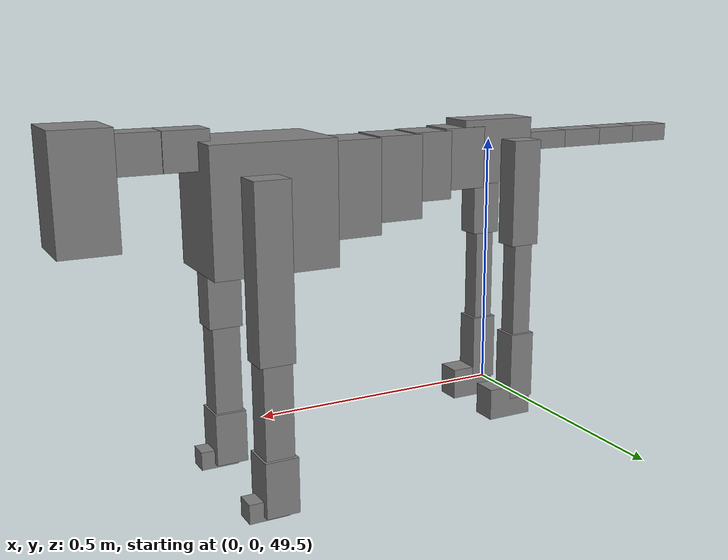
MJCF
<mujoco model="dog">

    <default>
        <joint armature="0.02" stiffness="1" damping="0.2" limited="true"/>
        <geom condim="3" friction="1 0.05 0.05" margin="0.01"/>
        <motor ctrllimited="true" ctrlrange="-1.0 1.0" forcelimited="true" gear="50"/>
    </default>

    <compiler inertiafromgeom="true" angle="radian"/>

    <option timestep="0.016" iterations="50" tolerance="1e-10" solver="Newton" jacobian="dense" cone="pyramidal"/>

    <size nconmax="20000" njmax="60000" nstack="5000000"/>
    <visual>
        <map force="0.1" zfar="30"/>
        <rgba haze="0.15 0.25 0.35 1"/>
        <quality shadowsize="2048"/>
        <global offwidth="800" offheight="800"/>
    </visual>

    <asset>
        <texture type="skybox" builtin="gradient" rgb1="0.3 0.5 0.7" rgb2="0 0 0" width="512" height="512"/>
        <texture name="texplane" type="2d" builtin="checker" rgb1=".2 .3 .4" rgb2=".1 0.15 0.2" width="512" height="512"
                 mark="cross" markrgb=".8 .8 .8"/>
        <texture name="texgeom" type="cube" builtin="flat" mark="cross" width="127" height="1278" rgb1="0.8 0.6 0.4"
                 rgb2="0.8 0.6 0.4" markrgb="1 1 1" random="0.01"/>

        <material name="matplane" reflectance="0.3" texture="texplane" texrepeat="1 1" texuniform="true"/>
        <material name="matgeom" texture="texgeom" texuniform="true" rgba="0.8 0.6 .4 1"/>
    </asset>

    <worldbody>
        <geom name="floor" pos="0 0 0" size="0 0 .25" type="plane" material="matplane" condim="3"/>

        <light directional="false" diffuse=".2 .2 .2" specular="0 0 0" pos="0 0 5" dir="0 0 -1" castshadow="false"/>
        <light mode="targetbodycom" target="torso" directional="false" diffuse=".8 .8 .8" specular="0.3 0.3 0.3"
               pos="0 0 4.0" dir="0 0 -1"/>

        <body name="root" pos="0 0 50">
            <freejoint name="root_1"/>
            <geom type="box" pos="0 0 -0.02" size="0.0774  0.0358  0.063" density="2030"/>

            <body name="spine1" pos="0.054 0 0">
                <joint name="spine1_y" axis="0 1 0" range="0 0.7" limited="true"/>
                <geom type="box" pos="0.02375 0 -0.03" size="0.04375  0.0375  0.05985" density="2030"/>

                <body name="spine2" pos="0.0612 0 0">
                    <joint name="spine2_y" axis="0 1 0" range="-0.15 0.15" limited="true"/>
                    <geom type="box" pos="0.03555  0  -0.04" size="0.04055  0.039  0.06615" density="2030"/>

                    <body name="spine3" pos="0.0730 0 0">
                        <joint name="spine3_y" axis="0 1 0" range="-0.15 0.15" limited="true"/>
                        <geom type="box" pos="0.03555  0  -0.057" size="0.04555  0.0445  0.081" density="2030"/>

                        <body name="spine4" pos="0.0780 0 0">
                            <joint name="spine4_y" axis="0 1 0" range="-0.15 0.15" limited="true"/>
                            <geom type="box" pos="0.05265  0  -0.07" size="0.05265  0.045  0.09135" density="2030"/>

                            <body name="torso" pos="0.1082 0 0">
                                <joint name="torso_y" axis="0 1 0" range="-0.15 0.15" limited="true"/>
                                <geom type="box" pos="0.11925  0  -0.085" size="0.11925  0.085  0.11745"
                                      density="2030"/>

                                <body name="neck1" pos="0.2160  0   0.0180">
                                    <joint name="neck1_y" axis="0 1 0" range="-1.2  -1" limited="true"/>
                                    <geom type="box" pos="0.0423  0  0" size="0.0423  0.03  0.036" density="2325"/>

                                    <body name="neck2" pos="0.0853  0  0">
                                        <joint name="neck2_y" axis="0 1 0" range="0.1  0" limited="true"/>
                                        <geom type="box" pos="0.0423  0  0" size="0.0423  0.03  0.036" density="2325"/>

                                        <body name="head" pos="0.0853  0  0">
                                            <joint name="head_y" axis="0 1 0" range="-0.3  -0.2" limited="true"/>
                                            <geom type="box" pos="0.0531  0  -0.055" size="0.0531  0.06  0.1044"
                                                  density="4030"/>

                                        </body>
                                    </body>
                                </body>

                                <body name="front_shoulder" pos="0.156  0   -0.0480">
                                    <joint name="front_shoulder_y" axis="0 1 0" range="-1 1.5" limited="true"/>
                                    <geom type="box" pos="0 0.13 -0.1353" size="0.0338  0.0289  0.1620" density="1158"/>
                                    <geom type="box" pos="0 -0.13 -0.1353" size="0.0338  0.0289  0.1620"
                                          density="1158"/>

                                    <body name="front_elbow" pos="0  0  -0.2707">
                                        <joint name="front_elbow_y" axis="0 1 0" range="-2 0" limited="true"/>
                                        <geom type="box" pos="0 0.13 -0.1069" size="0.0277  0.0283  0.1069"
                                              density="1081"/>
                                        <geom type="box" pos="0 -0.13 -0.1069" size="0.0277  0.0283  0.1069"
                                              density="1081"/>

                                        <body name="front_wrist" pos="0  0  -0.2137">
                                            <joint name="front_wrist_y" axis="0 1 0" range="-0.2 0" limited="true"/>
                                            <geom type="box" pos="0 0.13 -0.0402" size="0.0319  0.0355  0.0534"
                                                  density="1664"/>
                                            <geom type="box" pos="0 -0.13 -0.0402" size="0.0319  0.0355  0.0534"
                                                  density="1664"/>

                                            <body name="front_finger_end" pos="0  0  -0.0805">
                                                <joint name="front_finger_y" axis="0 1 0" range="-0.4 1"
                                                       limited="true"/>
                                                <geom type="box" pos="0.0210  0.13  -0.0036"
                                                      size="0.0386  0.0210  0.0186" density="1515"/>
                                                <geom type="box" pos="0.0210  -0.13  -0.0036"
                                                      size="0.0386  0.0210  0.0186" density="1515"/>

                                            </body>

                                        </body>
                                    </body>
                                </body>

                            </body>
                        </body>
                    </body>
                </body>
            </body>

            <body name="back_hip" pos="-0.03 0 -0.018">
                <joint name="back_hip_y" axis="0 1 0" range="-1.5 0.3" limited="true"/>
                <geom type="box" pos="0 0.07 -0.0810" size="0.0303  0.0238  0.1038" density="1154"/>
                <geom type="box" pos="0 -0.07 -0.0810" size="0.0303  0.0238  0.1038" density="1154"/>

                <body name="back_knee" pos="0  0  -0.1620">
                    <joint name="back_knee_y" axis="0 1 0" range="0 2.8" limited="true"/>
                    <geom type="box" pos="0 0.07 -0.1091" size="0.0200  0.0197  0.1246" density="1227"/>
                    <geom type="box" pos="0 -0.07 -0.1091" size="0.0200  0.0197  0.1246" density="1227"/>

                    <body name="back_ankle" pos="0  0  -0.2182">
                        <joint name="back_ankle_y" axis="0 1 0" range="-2.2 0" limited="true"/>
                        <geom type="box" pos="0 0.07 -0.0565" size="0.0260  0.0260  0.0678" density="1284"/>
                        <geom type="box" pos="0 -0.07 -0.0565" size="0.0260  0.0260  0.0678" density="1284"/>

                        <body name="back_toe_end" pos="0  0  -0.1131">
                            <joint name="back_toe_y" axis="0 1 0" range="-0.4 1" limited="true"/>
                            <geom type="box" pos="0.0257  0.07  -0.0166" size="0.0471  0.0257  0.0316" density="1515"/>
                            <geom type="box" pos="0.0257  -0.07  -0.0166" size="0.0471  0.0257  0.0316" density="1515"/>

                        </body>
                    </body>
                </body>
            </body>

            <body name="tail1" pos="-0.074 0 -0.006">
                <joint name="tail1_y" axis="0 1 0" range="-0.2 0.2" limited="true"/>
                <geom type="box" pos="-0.0536  0  0" size="0.045  0.025  0.0175" density="1587"/>

                <body name="tail2" pos="-0.09 0 0">
                    <joint name="tail2_y" axis="0 1 0" range="-0.2 0.2" limited="true"/>
                    <geom type="box" pos="-0.0536  0  0" size="0.045  0.025  0.0175" density="1587"/>

                    <body name="tail3" pos="-0.09 0 0">
                        <joint name="tail3_y" axis="0 1 0" range="-0.2 0.2" limited="true"/>
                        <geom type="box" pos="-0.0536  0  0" size="0.045  0.025  0.0175" density="1587"/>

                        <body name="tail4" pos="-0.09 0 0">
                            <joint name="tail4_y" axis="0 1 0" range="-0.2 0.2" limited="true"/>
                            <geom type="box" pos="-0.0536  0  0" size="0.045  0.025  0.0175" density="1587"/>

                        </body>
                    </body>
                </body>
            </body>
        </body>
    </worldbody>

    <actuator>
        <motor joint="spine1_y" forcerange="-150 150     "/>
        <motor joint="spine2_y" forcerange="-150 150     "/>
        <motor joint="spine3_y" forcerange="-150 150     "/>
        <motor joint="spine4_y" forcerange="-150 150     "/>
        <motor joint="torso_y" forcerange="-150 150     "/>
        <motor joint="neck1_y" forcerange="-100 100       "/>
        <motor joint="neck2_y" forcerange="-100 100       "/>
        <motor joint="head_y" forcerange="-150 150       "/>
        <motor joint="front_shoulder_y" forcerange="-126.97 165.47"/>
        <motor joint="front_elbow_y" forcerange="-131.67 174.15"/>
        <motor joint="front_wrist_y" forcerange="-149.25 134.71"/>
        <motor joint="front_finger_y" forcerange="-35.61 36.54"/>
        <motor joint="back_hip_y" forcerange="-233.71 283.10"/>
        <motor joint="back_knee_y" forcerange="-215.22 271.44"/>
        <motor joint="back_angle_y" forcerange="-199.55 116.37"/>
        <motor joint="back_toe_y" forcerange="-70.29 55.43"/>
        <motor joint="tail1_y" forcerange="-50 50     "/>
        <motor joint="tail2_y" forcerange="-50 50     "/>
        <motor joint="tail3_y" forcerange="-50 50     "/>
        <motor joint="tail4_y" forcerange="-50 50     "/>
    </actuator>
</mujoco>
